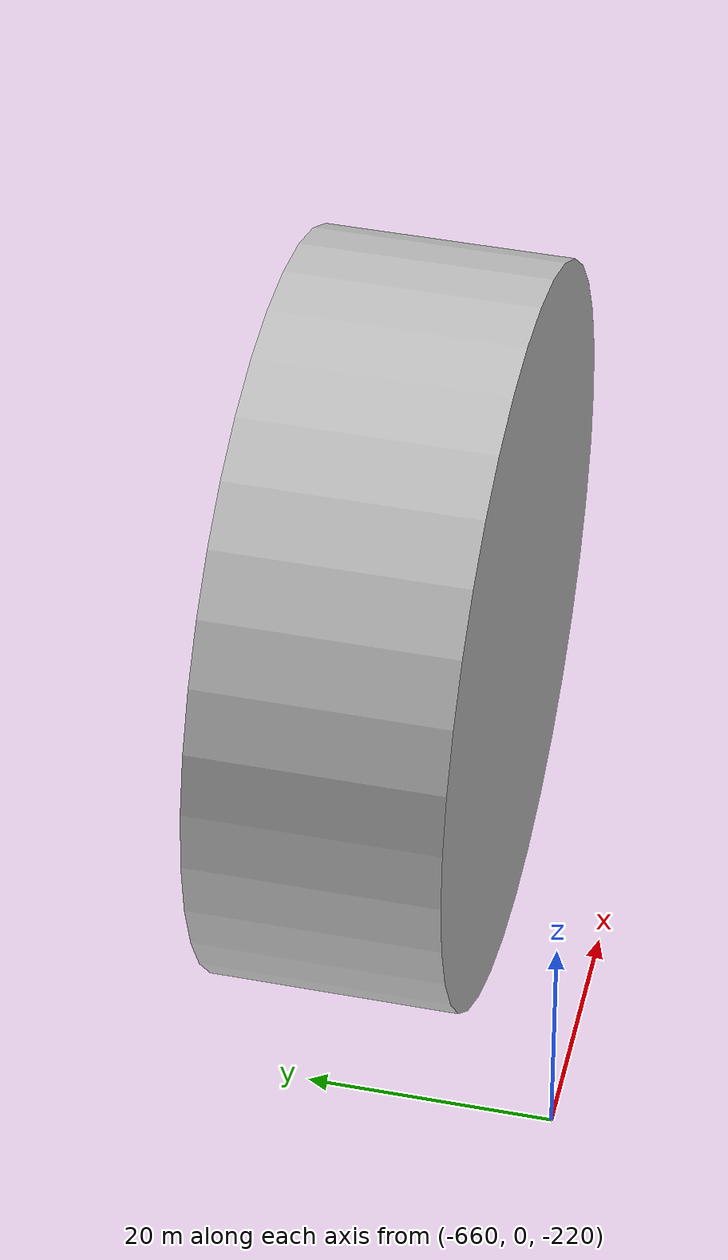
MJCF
<mujoco model="Koph">
  <default>
    <default class="visual">
      <geom group="2" type="mesh" contype="0" conaffinity="0"/>
    </default>
    <default class="collision">
      <geom group="3" type="mesh"/>
    </default>
  </default>
  <asset>
    <material name="mat_1" specular="0.484529" shininess="1.0" rgba="0.752941 0.752941 0.752941 1.0"/>
    <mesh file="Koph.obj"/>
  </asset>
  <worldbody>
    <body name="Koph">
      <freejoint/>
      <geom material="mat_1" mesh="Koph" class="visual"/>
      <geom mesh="Koph" class="collision"/>
    </body>
  </worldbody>
</mujoco>
